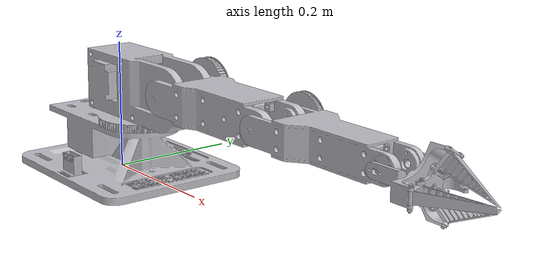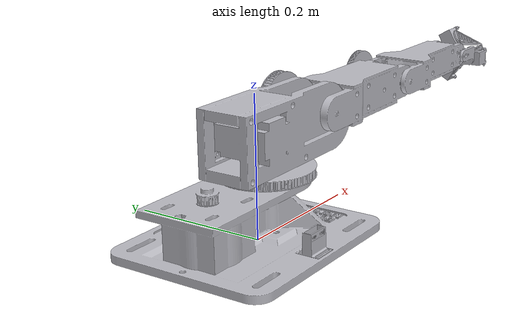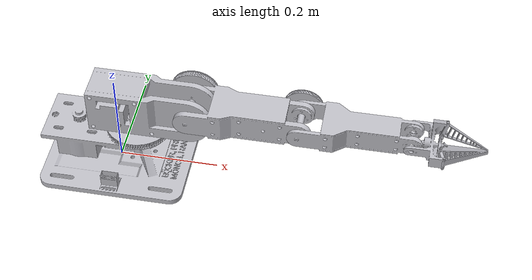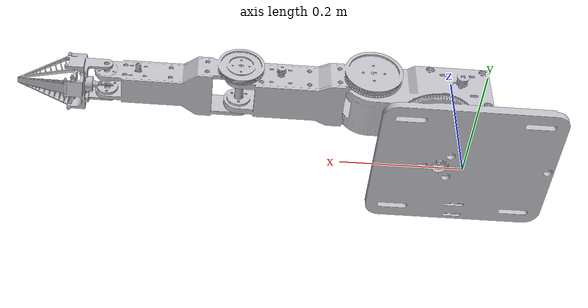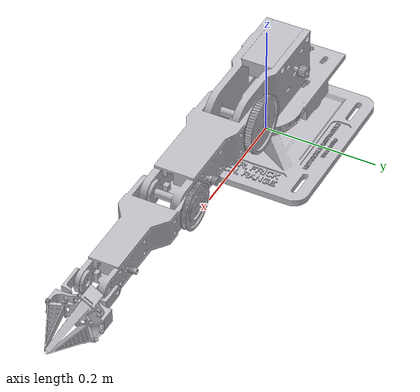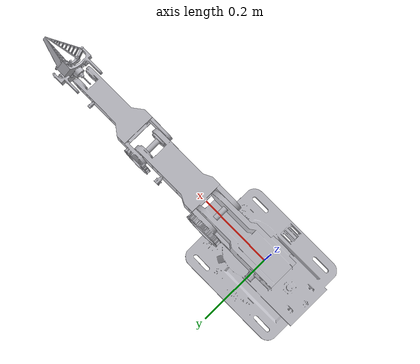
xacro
<?xml version="1.0" ?>
<robot name="robot" xmlns:xacro="http://www.ros.org/wiki/xacro">

<xacro:include filename="$(find robot_description)/urdf/materials.xacro" />
<xacro:include filename="$(find robot_description)/urdf/robot.trans" />
<xacro:include filename="$(find robot_description)/urdf/robot.gazebo" />
<link name="base_link">
  <inertial>
    <origin xyz="-0.0679401062157721 0.0014277216725000752 0.0384137562968467" rpy="0 0 0"/>
    <mass value="13.800576305987779"/>
    <inertia ixx="0.052924" iyy="0.098855" izz="0.120214" ixy="0.000123" iyz="-0.00015" ixz="0.001855"/>
  </inertial>
  <visual>
    <origin xyz="0 0 0" rpy="0 0 0"/>
    <geometry>
      <mesh filename="file://$(find robot_description)/meshes/base_link.stl" scale="0.001 0.001 0.001"/>
    </geometry>
    <material name="silver"/>
  </visual>
  <collision>
    <origin xyz="0 0 0" rpy="0 0 0"/>
    <geometry>
      <mesh filename="file://$(find robot_description)/meshes/base_link.stl" scale="0.001 0.001 0.001"/>
    </geometry>
  </collision>
</link>

<link name="link1_1">
  <inertial>
    <origin xyz="0.009853212349380608 -0.0013058822796042395 0.03681261950807038" rpy="0 0 0"/>
    <mass value="7.642342288589914"/>
    <inertia ixx="0.011723" iyy="0.040532" izz="0.039189" ixy="-0.00052" iyz="7.7e-05" ixz="0.002459"/>
  </inertial>
  <visual>
    <origin xyz="0.01268 -0.001996 -0.10629" rpy="0 0 0"/>
    <geometry>
      <mesh filename="file://$(find robot_description)/meshes/link1_1.stl" scale="0.001 0.001 0.001"/>
    </geometry>
    <material name="silver"/>
  </visual>
  <collision>
    <origin xyz="0.01268 -0.001996 -0.10629" rpy="0 0 0"/>
    <geometry>
      <mesh filename="file://$(find robot_description)/meshes/link1_1.stl" scale="0.001 0.001 0.001"/>
    </geometry>
  </collision>
</link>

<link name="link2_1">
  <inertial>
    <origin xyz="0.07785203265870212 0.006684318764593031 0.06532544373999474" rpy="0 0 0"/>
    <mass value="4.531072242141342"/>
    <inertia ixx="0.015526" iyy="0.026356" izz="0.019554" ixy="0.002104" iyz="0.001765" ixz="-0.011421"/>
  </inertial>
  <visual>
    <origin xyz="-0.09387 -0.001996 -0.15129" rpy="0 0 0"/>
    <geometry>
      <mesh filename="file://$(find robot_description)/meshes/link2_1.stl" scale="0.001 0.001 0.001"/>
    </geometry>
    <material name="silver"/>
  </visual>
  <collision>
    <origin xyz="-0.09387 -0.001996 -0.15129" rpy="0 0 0"/>
    <geometry>
      <mesh filename="file://$(find robot_description)/meshes/link2_1.stl" scale="0.001 0.001 0.001"/>
    </geometry>
  </collision>
</link>

<link name="link3_1">
  <inertial>
    <origin xyz="0.08865319906030028 0.008333660765872107 0.03226660259352443" rpy="0 0 0"/>
    <mass value="1.942633915240748"/>
    <inertia ixx="0.003579" iyy="0.012679" izz="0.012845" ixy="0.001413" iyz="0.000514" ixz="-0.003887"/>
  </inertial>
  <visual>
    <origin xyz="-0.2624 -0.001996 -0.292704" rpy="0 0 0"/>
    <geometry>
      <mesh filename="file://$(find robot_description)/meshes/link3_1.stl" scale="0.001 0.001 0.001"/>
    </geometry>
    <material name="silver"/>
  </visual>
  <collision>
    <origin xyz="-0.2624 -0.001996 -0.292704" rpy="0 0 0"/>
    <geometry>
      <mesh filename="file://$(find robot_description)/meshes/link3_1.stl" scale="0.001 0.001 0.001"/>
    </geometry>
  </collision>
</link>

<link name="link4_1">
  <inertial>
    <origin xyz="0.03760750782340139 0.007481639102787173 -0.007913875947465843" rpy="0 0 0"/>
    <mass value="0.2862169162828504"/>
    <inertia ixx="0.000355" iyy="0.000164" izz="0.00024" ixy="-8e-06" iyz="1e-06" ixz="3e-06"/>
  </inertial>
  <visual>
    <origin xyz="-0.469133 -0.001996 -0.367948" rpy="0 0 0"/>
    <geometry>
      <mesh filename="file://$(find robot_description)/meshes/link4_1.stl" scale="0.001 0.001 0.001"/>
    </geometry>
    <material name="silver"/>
  </visual>
  <collision>
    <origin xyz="-0.469133 -0.001996 -0.367948" rpy="0 0 0"/>
    <geometry>
      <mesh filename="file://$(find robot_description)/meshes/link4_1.stl" scale="0.001 0.001 0.001"/>
    </geometry>
  </collision>
</link>

<link name="plate_1">
  <inertial>
    <origin xyz="-0.5152768789930368 0.359593601257941 -0.0019849464337260425" rpy="0 0 0"/>
    <mass value="0.005591792200815245"/>
    <inertia ixx="1e-06" iyy="1e-06" izz="1e-06" ixy="0.0" iyz="0.0" ixz="-0.0"/>
  </inertial>
  <visual>
    <origin xyz="-1.03536 0.357604 -0.361597" rpy="0 0 0"/>
    <geometry>
      <mesh filename="file://$(find robot_description)/meshes/plate_1.stl" scale="0.001 0.001 0.001"/>
    </geometry>
    <material name="silver"/>
  </visual>
  <collision>
    <origin xyz="-1.03536 0.357604 -0.361597" rpy="0 0 0"/>
    <geometry>
      <mesh filename="file://$(find robot_description)/meshes/plate_1.stl" scale="0.001 0.001 0.001"/>
    </geometry>
  </collision>
</link>

<link name="finger1_1">
  <inertial>
    <origin xyz="0.017787445914003053 0.01945172295891951 -0.00030579074354203373" rpy="0 0 0"/>
    <mass value="0.007627104997040501"/>
    <inertia ixx="1e-06" iyy="4e-06" izz="5e-06" ixy="-1e-06" iyz="-0.0" ixz="-0.0"/>
  </inertial>
  <visual>
    <origin xyz="-0.528633 0.043004 -0.3596" rpy="0 0 0"/>
    <geometry>
      <mesh filename="file://$(find robot_description)/meshes/finger1_1.stl" scale="0.001 0.001 0.001"/>
    </geometry>
    <material name="silver"/>
  </visual>
  <collision>
    <origin xyz="-0.528633 0.043004 -0.3596" rpy="0 0 0"/>
    <geometry>
      <mesh filename="file://$(find robot_description)/meshes/finger1_1.stl" scale="0.001 0.001 0.001"/>
    </geometry>
  </collision>
</link>

<link name="finger3_1">
  <inertial>
    <origin xyz="0.016538444380158834 -0.009305155777922368 0.01652756515622833" rpy="0 0 0"/>
    <mass value="0.008118325054343886"/>
    <inertia ixx="1e-06" iyy="5e-06" izz="5e-06" ixy="1e-06" iyz="0.0" ixz="-1e-06"/>
  </inertial>
  <visual>
    <origin xyz="-0.528633 -0.024496 -0.320629" rpy="0 0 0"/>
    <geometry>
      <mesh filename="file://$(find robot_description)/meshes/finger3_1.stl" scale="0.001 0.001 0.001"/>
    </geometry>
    <material name="silver"/>
  </visual>
  <collision>
    <origin xyz="-0.528633 -0.024496 -0.320629" rpy="0 0 0"/>
    <geometry>
      <mesh filename="file://$(find robot_description)/meshes/finger3_1.stl" scale="0.001 0.001 0.001"/>
    </geometry>
  </collision>
</link>

<link name="finger2_1">
  <inertial>
    <origin xyz="0.016432808719543224 -0.009705029513755988 -0.016400937312406938" rpy="0 0 0"/>
    <mass value="0.008118323730919927"/>
    <inertia ixx="1e-06" iyy="5e-06" izz="5e-06" ixy="1e-06" iyz="-0.0" ixz="1e-06"/>
  </inertial>
  <visual>
    <origin xyz="-0.528633 -0.024496 -0.398571" rpy="0 0 0"/>
    <geometry>
      <mesh filename="file://$(find robot_description)/meshes/finger2_1.stl" scale="0.001 0.001 0.001"/>
    </geometry>
    <material name="silver"/>
  </visual>
  <collision>
    <origin xyz="-0.528633 -0.024496 -0.398571" rpy="0 0 0"/>
    <geometry>
      <mesh filename="file://$(find robot_description)/meshes/finger2_1.stl" scale="0.001 0.001 0.001"/>
    </geometry>
  </collision>
</link>

<joint name="joint1" type="revolute">
  <origin xyz="-0.01268 0.001996 0.10629" rpy="0 0 0"/>
  <parent link="base_link"/>
  <child link="link1_1"/>
  <axis xyz="-0.0 0.0 -1.0"/>
  <limit upper="2.705593" lower="-2.5571593" effort="100.0" velocity="5.0"/>
</joint>

<joint name="joint2" type="revolute">
  <origin xyz="0.10655 0.0 0.045" rpy="0 0 0"/>
  <parent link="link1_1"/>
  <child link="link2_1"/>
  <axis xyz="0.0 -1.0 0.0"/>
  <limit upper="0.905796" lower="-1.016198" effort="100.0" velocity="5.0"/>
</joint>

<joint name="joint3" type="revolute">
  <origin xyz="0.16853 0.0 0.141414" rpy="0 0 0"/>
  <parent link="link2_1"/>
  <child link="link3_1"/>
  <axis xyz="0.0 -1.0 0.0"/>
  <limit upper="2.330162" lower="-1.628862" effort="100.0" velocity="5.0"/>
</joint>

<joint name="joint4" type="revolute">
  <origin xyz="0.206733 0.0 0.075244" rpy="0 0 0"/>
  <parent link="link3_1"/>
  <child link="link4_1"/>
  <axis xyz="-0.0 1.0 -0.0"/>
  <limit upper="1.311329" lower="-2.087129" effort="100.0" velocity="5.0"/>
</joint>

<joint name="joint_plate" type="prismatic">
  <origin xyz="0.566227 -0.3596 -0.006351" rpy="0 0 0"/>
  <parent link="link4_1"/>
  <child link="plate_1"/>
  <axis xyz="1.0 0.0 0.0"/>
  <limit upper="0.009" lower="0.0" effort="100.0" velocity="5.0"/>
</joint>

<joint name="joint_finger1" type="revolute">
  <origin xyz="0.0595 -0.045 -0.008348" rpy="0 0 0"/>
  <parent link="link4_1"/>
  <child link="finger1_1"/>
  <axis xyz="-0.0 0.0 -1.0"/>
  <limit upper="0.349066" lower="0.0" effort="100.0" velocity="5.0"/>
</joint>

<joint name="joint_finger2" type="revolute">
  <origin xyz="0.0595 0.0225 -0.047319" rpy="0 0 0"/>
  <parent link="link4_1"/>
  <child link="finger3_1"/>
  <axis xyz="-0.0 0.866025 0.5"/>
  <limit upper="0.349066" lower="0.0" effort="100.0" velocity="5.0"/>
</joint>

<joint name="joint_finger3" type="revolute">
  <origin xyz="0.0595 0.0225 0.030623" rpy="0 0 0"/>
  <parent link="link4_1"/>
  <child link="finger2_1"/>
  <axis xyz="0.0 -0.866025 0.5"/>
  <limit upper="0.349066" lower="0.0" effort="100.0" velocity="5.0"/>
</joint>

</robot>
